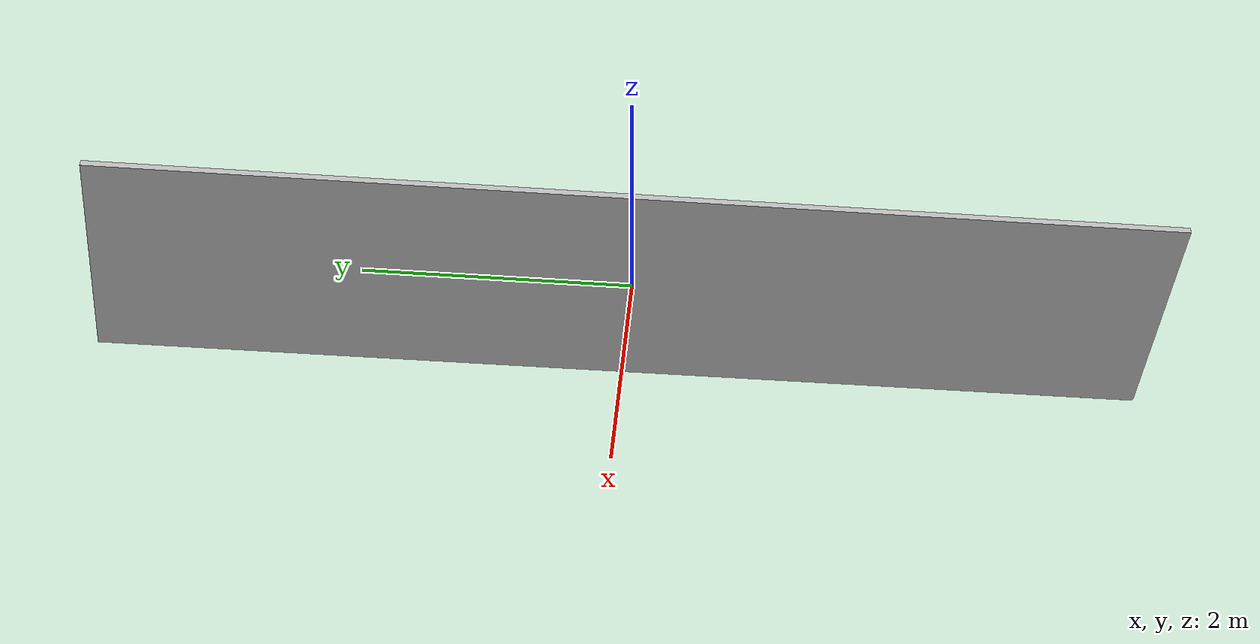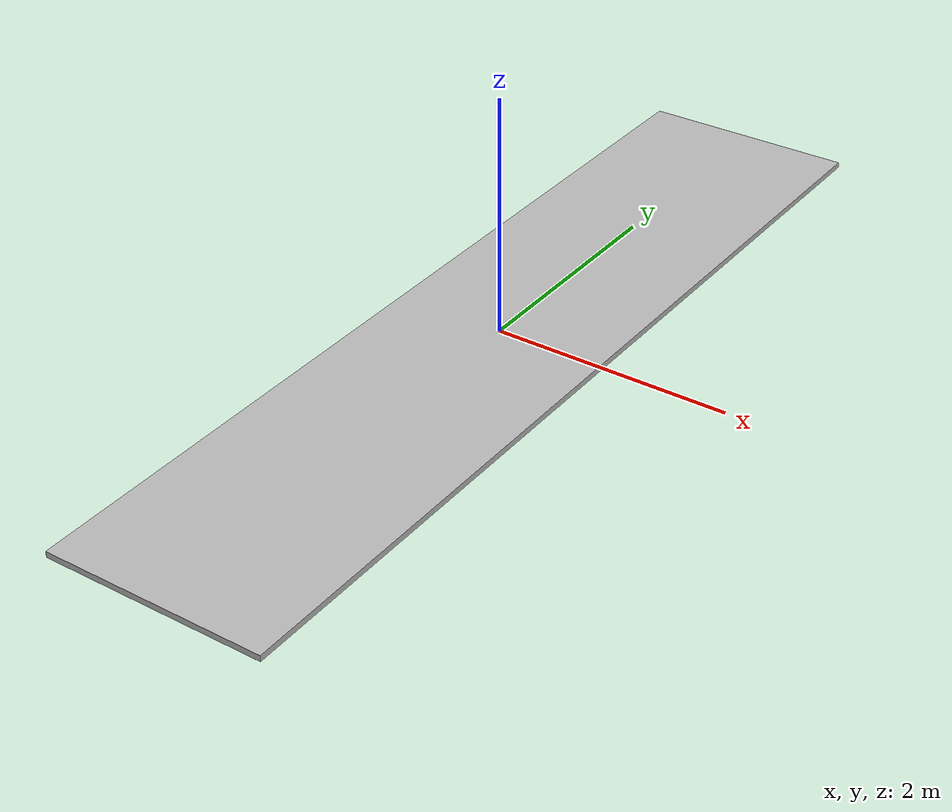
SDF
<?xml version="1.0" ?>
<sdf version="1.5">
  <model name="skyline1">
    <static>true</static>
    <link name="body">
      <pose>0 0 0 0 0 0</pose>
      <visual name="visual">
	<geometry>
	  <box>
	    <size>1.85 8.000 0.05</size>
	  </box>
	</geometry>
	<material>
	  <script>
            <uri>model://skyline1</uri>
            <name>NewYork/Diffuse</name>
          </script>
	</material>
      </visual>
    </link>
  </model>
</sdf>
